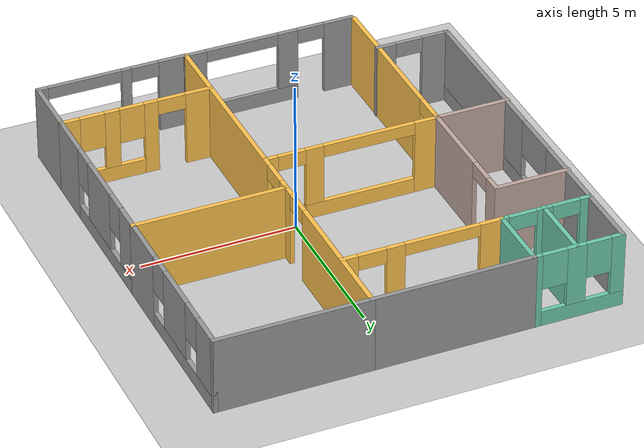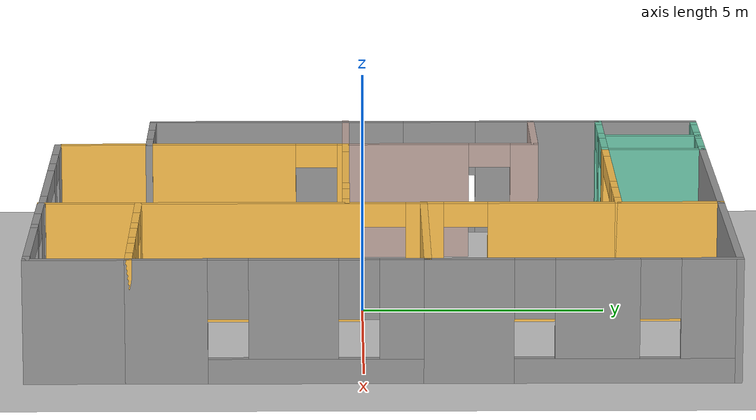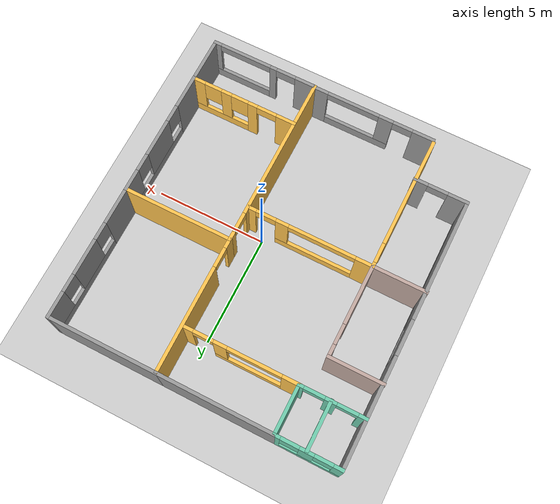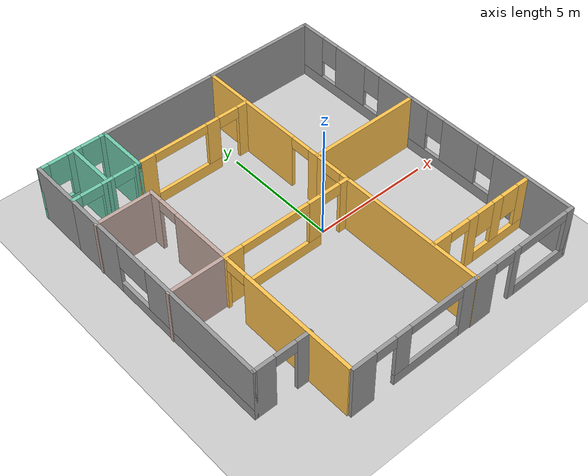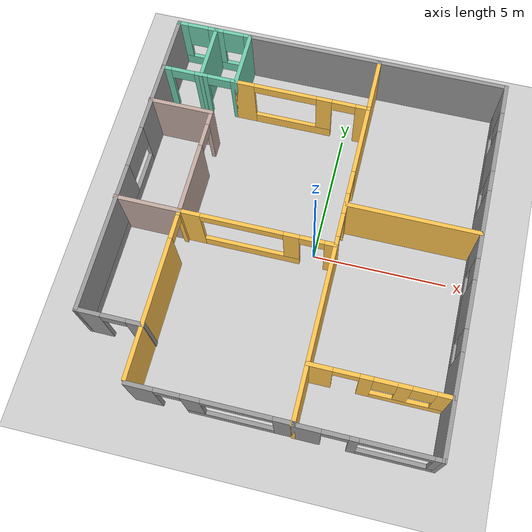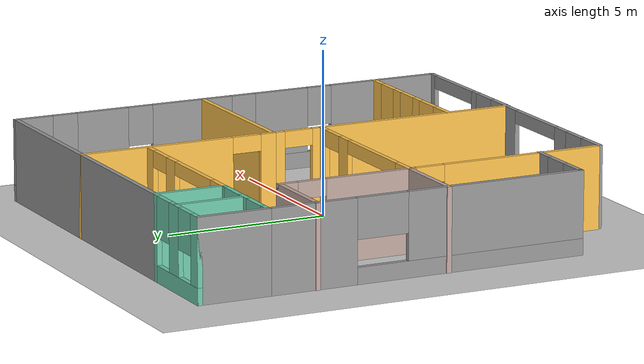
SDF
<sdf version="1.6">
 <world name="default">
  <model name="ground_plane">
   <static>1</static>
   <link name="link">
    <collision name="collision">
     <geometry><plane><normal>0 0 1</normal><size>100 100</size></plane></geometry>
     <surface>
      <contact><collide_bitmask>65535</collide_bitmask></contact>
      <friction><ode><mu>100</mu><mu2>50</mu2></ode></friction>
     </surface>
    </collision>
    <visual name="visual">
     <cast_shadows>0</cast_shadows>
     <geometry><plane><normal>0 0 1</normal><size>100 100</size></plane></geometry>
     <material>
      <script><uri>file://media/materials/scripts/gazebo.material</uri><name>Gazebo/Grey</name></script>
     </material>
    </visual>
   </link>
  </model>
  <model name="Building">
   <pose>-0.7405 0.37527 0 0 -0 0</pose>
   <link name="Wall_0">
    <pose>6.41568 -2.05 0 0 -0 1.5708</pose>
    <visual name="Wall_0_Visual_0">
     <pose>-2.18903 0 1.25 0 -0 0</pose>
     <geometry><box><size>1.62194 0.15 2.5</size></box></geometry>
     <material>
      <script><uri>file://media/materials/scripts/gazebo.material</uri><name>Gazebo/Grey</name></script>
      <ambient>1 1 1 1</ambient>
     </material>
     <meta><layer>0</layer></meta>
    </visual>
    <collision name="Wall_0_Collision_0">
     <geometry><box><size>1.62194 0.15 2.5</size></box></geometry>
     <pose>-2.18903 0 1.25 0 -0 0</pose>
    </collision>
    <visual name="Wall_0_Visual_1">
     <pose>0.81097 0 0.25 0 -0 0</pose>
     <geometry><box><size>4.37806 0.15 0.5</size></box></geometry>
     <material>
      <script><uri>file://media/materials/scripts/gazebo.material</uri><name>Gazebo/Grey</name></script>
      <ambient>1 1 1 1</ambient>
     </material>
     <meta><layer>0</layer></meta>
    </visual>
    <collision name="Wall_0_Collision_1">
     <geometry><box><size>4.37806 0.15 0.5</size></box></geometry>
     <pose>0.81097 0 0.25 0 -0 0</pose>
    </collision>
    <visual name="Wall_0_Visual_2">
     <pose>0.301348 0 1.5 0 -0 0</pose>
     <geometry><box><size>1.75882 0.15 2</size></box></geometry>
     <material>
      <script><uri>file://media/materials/scripts/gazebo.material</uri><name>Gazebo/Grey</name></script>
      <ambient>1 1 1 1</ambient>
     </material>
     <meta><layer>0</layer></meta>
    </visual>
    <collision name="Wall_0_Collision_2">
     <geometry><box><size>1.75882 0.15 2</size></box></geometry>
     <pose>0.301348 0 1.5 0 -0 0</pose>
    </collision>
    <visual name="Wall_0_Visual_3">
     <pose>2.49038 0 1.5 0 -0 0</pose>
     <geometry><box><size>1.01924 0.15 2</size></box></geometry>
     <material>
      <script><uri>file://media/materials/scripts/gazebo.material</uri><name>Gazebo/Grey</name></script>
      <ambient>1 1 1 1</ambient>
     </material>
     <meta><layer>0</layer></meta>
    </visual>
    <collision name="Wall_0_Collision_3">
     <geometry><box><size>1.01924 0.15 2</size></box></geometry>
     <pose>2.49038 0 1.5 0 -0 0</pose>
    </collision>
    <visual name="Wall_0_Visual_4">
     <pose>-0.97806 0 1.9 0 -0 0</pose>
     <geometry><box><size>0.8 0.15 1.2</size></box></geometry>
     <material>
      <script><uri>file://media/materials/scripts/gazebo.material</uri><name>Gazebo/Grey</name></script>
      <ambient>1 1 1 1</ambient>
     </material>
     <meta><layer>0</layer></meta>
    </visual>
    <collision name="Wall_0_Collision_4">
     <geometry><box><size>0.8 0.15 1.2</size></box></geometry>
     <pose>-0.97806 0 1.9 0 -0 0</pose>
    </collision>
    <visual name="Wall_0_Visual_5">
     <pose>1.58076 0 1.9 0 -0 0</pose>
     <geometry><box><size>0.8 0.15 1.2</size></box></geometry>
     <material>
      <script><uri>file://media/materials/scripts/gazebo.material</uri><name>Gazebo/Grey</name></script>
      <ambient>1 1 1 1</ambient>
     </material>
     <meta><layer>0</layer></meta>
    </visual>
    <collision name="Wall_0_Collision_5">
     <geometry><box><size>0.8 0.15 1.2</size></box></geometry>
     <pose>1.58076 0 1.9 0 -0 0</pose>
    </collision>
   </link>
   <link name="Wall_1">
    <collision name="Wall_1_Collision">
     <geometry><box><size>5 0.15 2.5</size></box></geometry>
     <pose>0 0 1.25 0 -0 0</pose>
    </collision>
    <visual name="Wall_1_Visual">
     <pose>0 0 1.25 0 -0 0</pose>
     <geometry><box><size>5 0.15 2.5</size></box></geometry>
     <material>
      <script><uri>file://media/materials/scripts/gazebo.material</uri><name>Gazebo/Grey</name></script>
      <ambient>1 0.764706 0.305882 1</ambient>
     </material>
     <meta><layer>0</layer></meta>
    </visual>
    <pose>3.99068 0.875 0 0 -0 3.14159</pose>
   </link>
   <link name="Wall_12">
    <collision name="Wall_12_Collision">
     <geometry><box><size>5.25 0.15 2.5</size></box></geometry>
     <pose>0 0 1.25 0 -0 0</pose>
    </collision>
    <visual name="Wall_12_Visual">
     <pose>0 0 1.25 0 -0 0</pose>
     <geometry><box><size>5.25 0.15 2.5</size></box></geometry>
     <material>
      <script><uri>file://media/materials/scripts/gazebo.material</uri><name>Gazebo/Grey</name></script>
      <ambient>1 1 1 1</ambient>
     </material>
     <meta><layer>0</layer></meta>
    </visual>
    <pose>-0.984323 6.975 0 0 -0 3.14159</pose>
   </link>
   <link name="Wall_13">
    <collision name="Wall_13_Collision">
     <geometry><box><size>2.25 0.15 2.5</size></box></geometry>
     <pose>0 0 1.25 0 -0 0</pose>
    </collision>
    <visual name="Wall_13_Visual">
     <pose>0 0 1.25 0 -0 0</pose>
     <geometry><box><size>2.25 0.15 2.5</size></box></geometry>
     <material>
      <script><uri>file://media/materials/scripts/gazebo.material</uri><name>Gazebo/Grey</name></script>
      <ambient>0.435294 0.796078 0.67451 1</ambient>
     </material>
     <meta><layer>0</layer></meta>
    </visual>
    <pose>-3.53432 5.925 0 0 -0 -1.5708</pose>
   </link>
   <link name="Wall_14">
    <pose>-0.984323 4.875 0 0 -0 0</pose>
    <visual name="Wall_14_Visual_0">
     <pose>-2.22764 0 1.25 0 -0 0</pose>
     <geometry><box><size>0.794723 0.15 2.5</size></box></geometry>
     <material>
      <script><uri>file://media/materials/scripts/gazebo.material</uri><name>Gazebo/Grey</name></script>
      <ambient>1 0.764706 0.305882 1</ambient>
     </material>
     <meta><layer>0</layer></meta>
    </visual>
    <collision name="Wall_14_Collision_0">
     <geometry><box><size>0.794723 0.15 2.5</size></box></geometry>
     <pose>-2.22764 0 1.25 0 -0 0</pose>
    </collision>
    <visual name="Wall_14_Visual_1">
     <pose>2.34319 0 1.25 0 -0 0</pose>
     <geometry><box><size>0.563624 0.15 2.5</size></box></geometry>
     <material>
      <script><uri>file://media/materials/scripts/gazebo.material</uri><name>Gazebo/Grey</name></script>
      <ambient>1 0.764706 0.305882 1</ambient>
     </material>
     <meta><layer>0</layer></meta>
    </visual>
    <collision name="Wall_14_Collision_1">
     <geometry><box><size>0.563624 0.15 2.5</size></box></geometry>
     <pose>2.34319 0 1.25 0 -0 0</pose>
    </collision>
    <visual name="Wall_14_Visual_2">
     <pose>-0.334451 0 0.25 0 -0 0</pose>
     <geometry><box><size>2.99165 0.15 0.5</size></box></geometry>
     <material>
      <script><uri>file://media/materials/scripts/gazebo.material</uri><name>Gazebo/Grey</name></script>
      <ambient>1 0.764706 0.305882 1</ambient>
     </material>
     <meta><layer>0</layer></meta>
    </visual>
    <collision name="Wall_14_Collision_2">
     <geometry><box><size>2.99165 0.15 0.5</size></box></geometry>
     <pose>-0.334451 0 0.25 0 -0 0</pose>
    </collision>
    <visual name="Wall_14_Visual_3">
     <pose>0.865549 0 1.5 0 -0 0</pose>
     <geometry><box><size>0.591654 0.15 2</size></box></geometry>
     <material>
      <script><uri>file://media/materials/scripts/gazebo.material</uri><name>Gazebo/Grey</name></script>
      <ambient>1 0.764706 0.305882 1</ambient>
     </material>
     <meta><layer>0</layer></meta>
    </visual>
    <collision name="Wall_14_Collision_3">
     <geometry><box><size>0.591654 0.15 2</size></box></geometry>
     <pose>0.865549 0 1.5 0 -0 0</pose>
    </collision>
    <visual name="Wall_14_Visual_4">
     <pose>1.61138 0 2.25 0 -0 0</pose>
     <geometry><box><size>0.9 0.15 0.5</size></box></geometry>
     <material>
      <script><uri>file://media/materials/scripts/gazebo.material</uri><name>Gazebo/Grey</name></script>
      <ambient>1 0.764706 0.305882 1</ambient>
     </material>
     <meta><layer>0</layer></meta>
    </visual>
    <collision name="Wall_14_Collision_4">
     <geometry><box><size>0.9 0.15 0.5</size></box></geometry>
     <pose>1.61138 0 2.25 0 -0 0</pose>
    </collision>
    <visual name="Wall_14_Visual_5">
     <pose>-0.630277 0 2.3 0 -0 0</pose>
     <geometry><box><size>2.4 0.15 0.4</size></box></geometry>
     <material>
      <script><uri>file://media/materials/scripts/gazebo.material</uri><name>Gazebo/Grey</name></script>
      <ambient>1 0.764706 0.305882 1</ambient>
     </material>
     <meta><layer>0</layer></meta>
    </visual>
    <collision name="Wall_14_Collision_5">
     <geometry><box><size>2.4 0.15 0.4</size></box></geometry>
     <pose>-0.630277 0 2.3 0 -0 0</pose>
    </collision>
   </link>
   <link name="Wall_16">
    <pose>-4.95932 6.975 0 0 -0 3.14159</pose>
    <visual name="Wall_16_Visual_0">
     <pose>-1.33173 0 1.25 0 -0 0</pose>
     <geometry><box><size>0.336546 0.15 2.5</size></box></geometry>
     <material>
      <script><uri>file://media/materials/scripts/gazebo.material</uri><name>Gazebo/Grey</name></script>
      <ambient>0.435294 0.796078 0.67451 1</ambient>
     </material>
     <meta><layer>0</layer></meta>
    </visual>
    <collision name="Wall_16_Collision_0">
     <geometry><box><size>0.336546 0.15 2.5</size></box></geometry>
     <pose>-1.33173 0 1.25 0 -0 0</pose>
    </collision>
    <visual name="Wall_16_Visual_1">
     <pose>0.168273 0 0.25 0 -0 0</pose>
     <geometry><box><size>2.66345 0.15 0.5</size></box></geometry>
     <material>
      <script><uri>file://media/materials/scripts/gazebo.material</uri><name>Gazebo/Grey</name></script>
      <ambient>0.435294 0.796078 0.67451 1</ambient>
     </material>
     <meta><layer>0</layer></meta>
    </visual>
    <collision name="Wall_16_Collision_1">
     <geometry><box><size>2.66345 0.15 0.5</size></box></geometry>
     <pose>0.168273 0 0.25 0 -0 0</pose>
    </collision>
    <visual name="Wall_16_Visual_2">
     <pose>-0.053965 0 1.5 0 -0 0</pose>
     <geometry><box><size>0.618979 0.15 2</size></box></geometry>
     <material>
      <script><uri>file://media/materials/scripts/gazebo.material</uri><name>Gazebo/Grey</name></script>
      <ambient>0.435294 0.796078 0.67451 1</ambient>
     </material>
     <meta><layer>0</layer></meta>
    </visual>
    <collision name="Wall_16_Collision_2">
     <geometry><box><size>0.618979 0.15 2</size></box></geometry>
     <pose>-0.053965 0 1.5 0 -0 0</pose>
    </collision>
    <visual name="Wall_16_Visual_3">
     <pose>1.27776 0 1.5 0 -0 0</pose>
     <geometry><box><size>0.444475 0.15 2</size></box></geometry>
     <material>
      <script><uri>file://media/materials/scripts/gazebo.material</uri><name>Gazebo/Grey</name></script>
      <ambient>0.435294 0.796078 0.67451 1</ambient>
     </material>
     <meta><layer>0</layer></meta>
    </visual>
    <collision name="Wall_16_Collision_3">
     <geometry><box><size>0.444475 0.15 2</size></box></geometry>
     <pose>1.27776 0 1.5 0 -0 0</pose>
    </collision>
    <visual name="Wall_16_Visual_4">
     <pose>-0.763454 0 1.9 0 -0 0</pose>
     <geometry><box><size>0.8 0.15 1.2</size></box></geometry>
     <material>
      <script><uri>file://media/materials/scripts/gazebo.material</uri><name>Gazebo/Grey</name></script>
      <ambient>0.435294 0.796078 0.67451 1</ambient>
     </material>
     <meta><layer>0</layer></meta>
    </visual>
    <collision name="Wall_16_Collision_4">
     <geometry><box><size>0.8 0.15 1.2</size></box></geometry>
     <pose>-0.763454 0 1.9 0 -0 0</pose>
    </collision>
    <visual name="Wall_16_Visual_5">
     <pose>0.655525 0 1.9 0 -0 0</pose>
     <geometry><box><size>0.8 0.15 1.2</size></box></geometry>
     <material>
      <script><uri>file://media/materials/scripts/gazebo.material</uri><name>Gazebo/Grey</name></script>
      <ambient>0.435294 0.796078 0.67451 1</ambient>
     </material>
     <meta><layer>0</layer></meta>
    </visual>
    <collision name="Wall_16_Collision_5">
     <geometry><box><size>0.8 0.15 1.2</size></box></geometry>
     <pose>0.655525 0 1.9 0 -0 0</pose>
    </collision>
   </link>
   <link name="Wall_24">
    <collision name="Wall_24_Collision">
     <geometry><box><size>2.25 0.15 2.5</size></box></geometry>
     <pose>0 0 1.25 0 -0 0</pose>
    </collision>
    <visual name="Wall_24_Visual">
     <pose>0 0 1.25 0 -0 0</pose>
     <geometry><box><size>2.25 0.15 2.5</size></box></geometry>
     <material>
      <script><uri>file://media/materials/scripts/gazebo.material</uri><name>Gazebo/Grey</name></script>
      <ambient>1 1 1 1</ambient>
     </material>
     <meta><layer>0</layer></meta>
    </visual>
    <pose>-6.38432 5.925 0 0 -0 -1.5708</pose>
   </link>
   <link name="Wall_25">
    <pose>-4.95932 4.875 0 0 -0 0</pose>
    <visual name="Wall_25_Visual_0">
     <pose>-1.29513 0 1.25 0 -0 0</pose>
     <geometry><box><size>0.409735 0.15 2.5</size></box></geometry>
     <material>
      <script><uri>file://media/materials/scripts/gazebo.material</uri><name>Gazebo/Grey</name></script>
      <ambient>0.435294 0.796078 0.67451 1</ambient>
     </material>
     <meta><layer>0</layer></meta>
    </visual>
    <collision name="Wall_25_Collision_0">
     <geometry><box><size>0.409735 0.15 2.5</size></box></geometry>
     <pose>-1.29513 0 1.25 0 -0 0</pose>
    </collision>
    <visual name="Wall_25_Visual_1">
     <pose>0.063311 0 1.25 0 -0 0</pose>
     <geometry><box><size>0.50715 0.15 2.5</size></box></geometry>
     <material>
      <script><uri>file://media/materials/scripts/gazebo.material</uri><name>Gazebo/Grey</name></script>
      <ambient>0.435294 0.796078 0.67451 1</ambient>
     </material>
     <meta><layer>0</layer></meta>
    </visual>
    <collision name="Wall_25_Collision_1">
     <geometry><box><size>0.50715 0.15 2.5</size></box></geometry>
     <pose>0.063311 0 1.25 0 -0 0</pose>
    </collision>
    <visual name="Wall_25_Visual_2">
     <pose>1.35844 0 1.25 0 -0 0</pose>
     <geometry><box><size>0.283114 0.15 2.5</size></box></geometry>
     <material>
      <script><uri>file://media/materials/scripts/gazebo.material</uri><name>Gazebo/Grey</name></script>
      <ambient>0.435294 0.796078 0.67451 1</ambient>
     </material>
     <meta><layer>0</layer></meta>
    </visual>
    <collision name="Wall_25_Collision_2">
     <geometry><box><size>0.283114 0.15 2.5</size></box></geometry>
     <pose>1.35844 0 1.25 0 -0 0</pose>
    </collision>
    <visual name="Wall_25_Visual_3">
     <pose>-0.640265 0 2.25 0 -0 0</pose>
     <geometry><box><size>0.9 0.15 0.5</size></box></geometry>
     <material>
      <script><uri>file://media/materials/scripts/gazebo.material</uri><name>Gazebo/Grey</name></script>
      <ambient>0.435294 0.796078 0.67451 1</ambient>
     </material>
     <meta><layer>0</layer></meta>
    </visual>
    <collision name="Wall_25_Collision_3">
     <geometry><box><size>0.9 0.15 0.5</size></box></geometry>
     <pose>-0.640265 0 2.25 0 -0 0</pose>
    </collision>
    <visual name="Wall_25_Visual_4">
     <pose>0.766886 0 2.25 0 -0 0</pose>
     <geometry><box><size>0.9 0.15 0.5</size></box></geometry>
     <material>
      <script><uri>file://media/materials/scripts/gazebo.material</uri><name>Gazebo/Grey</name></script>
      <ambient>0.435294 0.796078 0.67451 1</ambient>
     </material>
     <meta><layer>0</layer></meta>
    </visual>
    <collision name="Wall_25_Collision_4">
     <geometry><box><size>0.9 0.15 0.5</size></box></geometry>
     <pose>0.766886 0 2.25 0 -0 0</pose>
    </collision>
   </link>
   <link name="Wall_27">
    <pose>-6.38432 -0.05 0 0 -0 -1.5708</pose>
    <visual name="Wall_27_Visual_0">
     <pose>-3.60177 0 1.25 0 -0 0</pose>
     <geometry><box><size>2.79646 0.15 2.5</size></box></geometry>
     <material>
      <script><uri>file://media/materials/scripts/gazebo.material</uri><name>Gazebo/Grey</name></script>
      <ambient>1 1 1 1</ambient>
     </material>
     <meta><layer>0</layer></meta>
    </visual>
    <collision name="Wall_27_Collision_0">
     <geometry><box><size>2.79646 0.15 2.5</size></box></geometry>
     <pose>-3.60177 0 1.25 0 -0 0</pose>
    </collision>
    <visual name="Wall_27_Visual_1">
     <pose>1.39823 0 0.25 0 -0 0</pose>
     <geometry><box><size>7.20354 0.15 0.5</size></box></geometry>
     <material>
      <script><uri>file://media/materials/scripts/gazebo.material</uri><name>Gazebo/Grey</name></script>
      <ambient>1 1 1 1</ambient>
     </material>
     <meta><layer>0</layer></meta>
    </visual>
    <collision name="Wall_27_Collision_1">
     <geometry><box><size>7.20354 0.15 0.5</size></box></geometry>
     <pose>1.39823 0 0.25 0 -0 0</pose>
    </collision>
    <visual name="Wall_27_Visual_2">
     <pose>2.19823 0 1.5 0 -0 0</pose>
     <geometry><box><size>5.60354 0.15 2</size></box></geometry>
     <material>
      <script><uri>file://media/materials/scripts/gazebo.material</uri><name>Gazebo/Grey</name></script>
      <ambient>1 1 1 1</ambient>
     </material>
     <meta><layer>0</layer></meta>
    </visual>
    <collision name="Wall_27_Collision_2">
     <geometry><box><size>5.60354 0.15 2</size></box></geometry>
     <pose>2.19823 0 1.5 0 -0 0</pose>
    </collision>
    <visual name="Wall_27_Visual_3">
     <pose>-1.40354 0 1.9 0 -0 0</pose>
     <geometry><box><size>1.6 0.15 1.2</size></box></geometry>
     <material>
      <script><uri>file://media/materials/scripts/gazebo.material</uri><name>Gazebo/Grey</name></script>
      <ambient>1 1 1 1</ambient>
     </material>
     <meta><layer>0</layer></meta>
    </visual>
    <collision name="Wall_27_Collision_3">
     <geometry><box><size>1.6 0.15 1.2</size></box></geometry>
     <pose>-1.40354 0 1.9 0 -0 0</pose>
    </collision>
   </link>
   <link name="Wall_3">
    <pose>3.99068 -4.975 0 0 -0 0</pose>
    <visual name="Wall_3_Visual_0">
     <pose>-2.03846 0 1.25 0 -0 0</pose>
     <geometry><box><size>0.923088 0.15 2.5</size></box></geometry>
     <material>
      <script><uri>file://media/materials/scripts/gazebo.material</uri><name>Gazebo/Grey</name></script>
      <ambient>1 0.764706 0.305882 1</ambient>
     </material>
     <meta><layer>0</layer></meta>
    </visual>
    <collision name="Wall_3_Collision_0">
     <geometry><box><size>0.923088 0.15 2.5</size></box></geometry>
     <pose>-2.03846 0 1.25 0 -0 0</pose>
    </collision>
    <visual name="Wall_3_Visual_1">
     <pose>-0.452103 0 1.25 0 -0 0</pose>
     <geometry><box><size>0.449617 0.15 2.5</size></box></geometry>
     <material>
      <script><uri>file://media/materials/scripts/gazebo.material</uri><name>Gazebo/Grey</name></script>
      <ambient>1 0.764706 0.305882 1</ambient>
     </material>
     <meta><layer>0</layer></meta>
    </visual>
    <collision name="Wall_3_Collision_1">
     <geometry><box><size>0.449617 0.15 2.5</size></box></geometry>
     <pose>-0.452103 0 1.25 0 -0 0</pose>
    </collision>
    <visual name="Wall_3_Visual_2">
     <pose>1.13635 0 0.25 0 -0 0</pose>
     <geometry><box><size>2.72729 0.15 0.5</size></box></geometry>
     <material>
      <script><uri>file://media/materials/scripts/gazebo.material</uri><name>Gazebo/Grey</name></script>
      <ambient>1 0.764706 0.305882 1</ambient>
     </material>
     <meta><layer>0</layer></meta>
    </visual>
    <collision name="Wall_3_Collision_2">
     <geometry><box><size>2.72729 0.15 0.5</size></box></geometry>
     <pose>1.13635 0 0.25 0 -0 0</pose>
    </collision>
    <visual name="Wall_3_Visual_3">
     <pose>0.812409 0 1.5 0 -0 0</pose>
     <geometry><box><size>0.479408 0.15 2</size></box></geometry>
     <material>
      <script><uri>file://media/materials/scripts/gazebo.material</uri><name>Gazebo/Grey</name></script>
      <ambient>1 0.764706 0.305882 1</ambient>
     </material>
     <meta><layer>0</layer></meta>
    </visual>
    <collision name="Wall_3_Collision_3">
     <geometry><box><size>0.479408 0.15 2</size></box></geometry>
     <pose>0.812409 0 1.5 0 -0 0</pose>
    </collision>
    <visual name="Wall_3_Visual_4">
     <pose>2.17606 0 1.5 0 -0 0</pose>
     <geometry><box><size>0.647887 0.15 2</size></box></geometry>
     <material>
      <script><uri>file://media/materials/scripts/gazebo.material</uri><name>Gazebo/Grey</name></script>
      <ambient>1 0.764706 0.305882 1</ambient>
     </material>
     <meta><layer>0</layer></meta>
    </visual>
    <collision name="Wall_3_Collision_4">
     <geometry><box><size>0.647887 0.15 2</size></box></geometry>
     <pose>2.17606 0 1.5 0 -0 0</pose>
    </collision>
    <visual name="Wall_3_Visual_5">
     <pose>0.172705 0 1.9 0 -0 0</pose>
     <geometry><box><size>0.8 0.15 1.2</size></box></geometry>
     <material>
      <script><uri>file://media/materials/scripts/gazebo.material</uri><name>Gazebo/Grey</name></script>
      <ambient>1 0.764706 0.305882 1</ambient>
     </material>
     <meta><layer>0</layer></meta>
    </visual>
    <collision name="Wall_3_Collision_5">
     <geometry><box><size>0.8 0.15 1.2</size></box></geometry>
     <pose>0.172705 0 1.9 0 -0 0</pose>
    </collision>
    <visual name="Wall_3_Visual_6">
     <pose>1.45211 0 1.9 0 -0 0</pose>
     <geometry><box><size>0.8 0.15 1.2</size></box></geometry>
     <material>
      <script><uri>file://media/materials/scripts/gazebo.material</uri><name>Gazebo/Grey</name></script>
      <ambient>1 0.764706 0.305882 1</ambient>
     </material>
     <meta><layer>0</layer></meta>
    </visual>
    <collision name="Wall_3_Collision_6">
     <geometry><box><size>0.8 0.15 1.2</size></box></geometry>
     <pose>1.45211 0 1.9 0 -0 0</pose>
    </collision>
    <visual name="Wall_3_Visual_7">
     <pose>-1.12691 0 2.25 0 -0 0</pose>
     <geometry><box><size>0.9 0.15 0.5</size></box></geometry>
     <material>
      <script><uri>file://media/materials/scripts/gazebo.material</uri><name>Gazebo/Grey</name></script>
      <ambient>1 0.764706 0.305882 1</ambient>
     </material>
     <meta><layer>0</layer></meta>
    </visual>
    <collision name="Wall_3_Collision_7">
     <geometry><box><size>0.9 0.15 0.5</size></box></geometry>
     <pose>-1.12691 0 2.25 0 -0 0</pose>
    </collision>
   </link>
   <link name="Wall_30">
    <collision name="Wall_30_Collision">
     <geometry><box><size>2.5 0.15 2.5</size></box></geometry>
     <pose>0 0 1.25 0 -0 0</pose>
    </collision>
    <visual name="Wall_30_Visual">
     <pose>0 0 1.25 0 -0 0</pose>
     <geometry><box><size>2.5 0.15 2.5</size></box></geometry>
     <material>
      <script><uri>file://media/materials/scripts/gazebo.material</uri><name>Gazebo/Grey</name></script>
      <ambient>0.760784 0.662745 0.627451 1</ambient>
     </material>
     <meta><layer>0</layer></meta>
    </visual>
    <pose>-5.24068 3.38074 0 0 -0 0</pose>
   </link>
   <link name="Wall_31">
    <pose>-4.06568 1.33074 0 0 -0 -1.5708</pose>
    <visual name="Wall_31_Visual_0">
     <pose>-1.82051 0 1.25 0 -0 0</pose>
     <geometry><box><size>0.608974 0.15 2.5</size></box></geometry>
     <material>
      <script><uri>file://media/materials/scripts/gazebo.material</uri><name>Gazebo/Grey</name></script>
      <ambient>0.760784 0.662745 0.627451 1</ambient>
     </material>
     <meta><layer>0</layer></meta>
    </visual>
    <collision name="Wall_31_Collision_0">
     <geometry><box><size>0.608974 0.15 2.5</size></box></geometry>
     <pose>-1.82051 0 1.25 0 -0 0</pose>
    </collision>
    <visual name="Wall_31_Visual_1">
     <pose>0.754487 0 1.25 0 -0 0</pose>
     <geometry><box><size>2.74103 0.15 2.5</size></box></geometry>
     <material>
      <script><uri>file://media/materials/scripts/gazebo.material</uri><name>Gazebo/Grey</name></script>
      <ambient>0.760784 0.662745 0.627451 1</ambient>
     </material>
     <meta><layer>0</layer></meta>
    </visual>
    <collision name="Wall_31_Collision_1">
     <geometry><box><size>2.74103 0.15 2.5</size></box></geometry>
     <pose>0.754487 0 1.25 0 -0 0</pose>
    </collision>
    <visual name="Wall_31_Visual_2">
     <pose>-1.06603 0 2.25 0 -0 0</pose>
     <geometry><box><size>0.9 0.15 0.5</size></box></geometry>
     <material>
      <script><uri>file://media/materials/scripts/gazebo.material</uri><name>Gazebo/Grey</name></script>
      <ambient>0.760784 0.662745 0.627451 1</ambient>
     </material>
     <meta><layer>0</layer></meta>
    </visual>
    <collision name="Wall_31_Collision_2">
     <geometry><box><size>0.9 0.15 0.5</size></box></geometry>
     <pose>-1.06603 0 2.25 0 -0 0</pose>
    </collision>
   </link>
   <link name="Wall_34">
    <pose>-1.26568 -0.719262 0 0 -0 0</pose>
    <visual name="Wall_34_Visual_0">
     <pose>-2.45687 0 1.25 0 -0 0</pose>
     <geometry><box><size>0.836268 0.15 2.5</size></box></geometry>
     <material>
      <script><uri>file://media/materials/scripts/gazebo.material</uri><name>Gazebo/Grey</name></script>
      <ambient>1 0.764706 0.305882 1</ambient>
     </material>
     <meta><layer>0</layer></meta>
    </visual>
    <collision name="Wall_34_Collision_0">
     <geometry><box><size>0.836268 0.15 2.5</size></box></geometry>
     <pose>-2.45687 0 1.25 0 -0 0</pose>
    </collision>
    <visual name="Wall_34_Visual_1">
     <pose>2.65737 0 1.25 0 -0 0</pose>
     <geometry><box><size>0.435259 0.15 2.5</size></box></geometry>
     <material>
      <script><uri>file://media/materials/scripts/gazebo.material</uri><name>Gazebo/Grey</name></script>
      <ambient>1 0.764706 0.305882 1</ambient>
     </material>
     <meta><layer>0</layer></meta>
    </visual>
    <collision name="Wall_34_Collision_1">
     <geometry><box><size>0.435259 0.15 2.5</size></box></geometry>
     <pose>2.65737 0 1.25 0 -0 0</pose>
    </collision>
    <visual name="Wall_34_Visual_2">
     <pose>-0.249495 0 0.25 0 -0 0</pose>
     <geometry><box><size>3.57847 0.15 0.5</size></box></geometry>
     <material>
      <script><uri>file://media/materials/scripts/gazebo.material</uri><name>Gazebo/Grey</name></script>
      <ambient>1 0.764706 0.305882 1</ambient>
     </material>
     <meta><layer>0</layer></meta>
    </visual>
    <collision name="Wall_34_Collision_2">
     <geometry><box><size>3.57847 0.15 0.5</size></box></geometry>
     <pose>-0.249495 0 0.25 0 -0 0</pose>
    </collision>
    <visual name="Wall_34_Visual_3">
     <pose>1.2505 0 1.5 0 -0 0</pose>
     <geometry><box><size>0.578474 0.15 2</size></box></geometry>
     <material>
      <script><uri>file://media/materials/scripts/gazebo.material</uri><name>Gazebo/Grey</name></script>
      <ambient>1 0.764706 0.305882 1</ambient>
     </material>
     <meta><layer>0</layer></meta>
    </visual>
    <collision name="Wall_34_Collision_3">
     <geometry><box><size>0.578474 0.15 2</size></box></geometry>
     <pose>1.2505 0 1.5 0 -0 0</pose>
    </collision>
    <visual name="Wall_34_Visual_4">
     <pose>1.98974 0 2.25 0 -0 0</pose>
     <geometry><box><size>0.9 0.15 0.5</size></box></geometry>
     <material>
      <script><uri>file://media/materials/scripts/gazebo.material</uri><name>Gazebo/Grey</name></script>
      <ambient>1 0.764706 0.305882 1</ambient>
     </material>
     <meta><layer>0</layer></meta>
    </visual>
    <collision name="Wall_34_Collision_4">
     <geometry><box><size>0.9 0.15 0.5</size></box></geometry>
     <pose>1.98974 0 2.25 0 -0 0</pose>
    </collision>
    <visual name="Wall_34_Visual_5">
     <pose>-0.538732 0 2.3 0 -0 0</pose>
     <geometry><box><size>3 0.15 0.4</size></box></geometry>
     <material>
      <script><uri>file://media/materials/scripts/gazebo.material</uri><name>Gazebo/Grey</name></script>
      <ambient>1 0.764706 0.305882 1</ambient>
     </material>
     <meta><layer>0</layer></meta>
    </visual>
    <collision name="Wall_34_Collision_5">
     <geometry><box><size>3 0.15 0.4</size></box></geometry>
     <pose>-0.538732 0 2.3 0 -0 0</pose>
    </collision>
   </link>
   <link name="Wall_36">
    <pose>-5.20932 -4.975 0 0 -0 0</pose>
    <visual name="Wall_36_Visual_0">
     <pose>-0.782538 0 1.25 0 -0 0</pose>
     <geometry><box><size>0.934924 0.15 2.5</size></box></geometry>
     <material>
      <script><uri>file://media/materials/scripts/gazebo.material</uri><name>Gazebo/Grey</name></script>
      <ambient>1 1 1 1</ambient>
     </material>
     <meta><layer>0</layer></meta>
    </visual>
    <collision name="Wall_36_Collision_0">
     <geometry><box><size>0.934924 0.15 2.5</size></box></geometry>
     <pose>-0.782538 0 1.25 0 -0 0</pose>
    </collision>
    <visual name="Wall_36_Visual_1">
     <pose>0.917462 0 1.25 0 -0 0</pose>
     <geometry><box><size>0.665076 0.15 2.5</size></box></geometry>
     <material>
      <script><uri>file://media/materials/scripts/gazebo.material</uri><name>Gazebo/Grey</name></script>
      <ambient>1 1 1 1</ambient>
     </material>
     <meta><layer>0</layer></meta>
    </visual>
    <collision name="Wall_36_Collision_1">
     <geometry><box><size>0.665076 0.15 2.5</size></box></geometry>
     <pose>0.917462 0 1.25 0 -0 0</pose>
    </collision>
    <visual name="Wall_36_Visual_2">
     <pose>0.134924 0 2.25 0 -0 0</pose>
     <geometry><box><size>0.9 0.15 0.5</size></box></geometry>
     <material>
      <script><uri>file://media/materials/scripts/gazebo.material</uri><name>Gazebo/Grey</name></script>
      <ambient>1 1 1 1</ambient>
     </material>
     <meta><layer>0</layer></meta>
    </visual>
    <collision name="Wall_36_Collision_2">
     <geometry><box><size>0.9 0.15 0.5</size></box></geometry>
     <pose>0.134924 0 2.25 0 -0 0</pose>
    </collision>
   </link>
   <link name="Wall_42">
    <collision name="Wall_42_Collision">
     <geometry><box><size>2.5 0.15 2.5</size></box></geometry>
     <pose>0 0 1.25 0 -0 0</pose>
    </collision>
    <visual name="Wall_42_Visual">
     <pose>0 0 1.25 0 -0 0</pose>
     <geometry><box><size>2.5 0.15 2.5</size></box></geometry>
     <material>
      <script><uri>file://media/materials/scripts/gazebo.material</uri><name>Gazebo/Grey</name></script>
      <ambient>0.760784 0.662745 0.627451 1</ambient>
     </material>
     <meta><layer>0</layer></meta>
    </visual>
    <pose>-5.24068 -0.719262 0 0 -0 3.14159</pose>
   </link>
   <link name="Wall_46">
    <pose>-1.20772 -6.9484 0 0 -0 3.14159</pose>
    <visual name="Wall_46_Visual_0">
     <pose>-2.49181 0 1.25 0 -0 0</pose>
     <geometry><box><size>0.766375 0.15 2.5</size></box></geometry>
     <material>
      <script><uri>file://media/materials/scripts/gazebo.material</uri><name>Gazebo/Grey</name></script>
      <ambient>1 1 1 1</ambient>
     </material>
     <meta><layer>0</layer></meta>
    </visual>
    <collision name="Wall_46_Collision_0">
     <geometry><box><size>0.766375 0.15 2.5</size></box></geometry>
     <pose>-2.49181 0 1.25 0 -0 0</pose>
    </collision>
    <visual name="Wall_46_Visual_1">
     <pose>2.36458 0 1.25 0 -0 0</pose>
     <geometry><box><size>1.02084 0.15 2.5</size></box></geometry>
     <material>
      <script><uri>file://media/materials/scripts/gazebo.material</uri><name>Gazebo/Grey</name></script>
      <ambient>1 1 1 1</ambient>
     </material>
     <meta><layer>0</layer></meta>
    </visual>
    <collision name="Wall_46_Collision_1">
     <geometry><box><size>1.02084 0.15 2.5</size></box></geometry>
     <pose>2.36458 0 1.25 0 -0 0</pose>
    </collision>
    <visual name="Wall_46_Visual_2">
     <pose>-0.577231 0 0.25 0 -0 0</pose>
     <geometry><box><size>3.06279 0.15 0.5</size></box></geometry>
     <material>
      <script><uri>file://media/materials/scripts/gazebo.material</uri><name>Gazebo/Grey</name></script>
      <ambient>1 1 1 1</ambient>
     </material>
     <meta><layer>0</layer></meta>
    </visual>
    <collision name="Wall_46_Collision_2">
     <geometry><box><size>3.06279 0.15 0.5</size></box></geometry>
     <pose>-0.577231 0 0.25 0 -0 0</pose>
    </collision>
    <visual name="Wall_46_Visual_3">
     <pose>0.622769 0 1.5 0 -0 0</pose>
     <geometry><box><size>0.662788 0.15 2</size></box></geometry>
     <material>
      <script><uri>file://media/materials/scripts/gazebo.material</uri><name>Gazebo/Grey</name></script>
      <ambient>1 1 1 1</ambient>
     </material>
     <meta><layer>0</layer></meta>
    </visual>
    <collision name="Wall_46_Collision_3">
     <geometry><box><size>0.662788 0.15 2</size></box></geometry>
     <pose>0.622769 0 1.5 0 -0 0</pose>
    </collision>
    <visual name="Wall_46_Visual_4">
     <pose>1.40416 0 2.25 0 -0 0</pose>
     <geometry><box><size>0.9 0.15 0.5</size></box></geometry>
     <material>
      <script><uri>file://media/materials/scripts/gazebo.material</uri><name>Gazebo/Grey</name></script>
      <ambient>1 1 1 1</ambient>
     </material>
     <meta><layer>0</layer></meta>
    </visual>
    <collision name="Wall_46_Collision_4">
     <geometry><box><size>0.9 0.15 0.5</size></box></geometry>
     <pose>1.40416 0 2.25 0 -0 0</pose>
    </collision>
    <visual name="Wall_46_Visual_5">
     <pose>-0.908625 0 2.3 0 -0 0</pose>
     <geometry><box><size>2.4 0.15 0.4</size></box></geometry>
     <material>
      <script><uri>file://media/materials/scripts/gazebo.material</uri><name>Gazebo/Grey</name></script>
      <ambient>1 1 1 1</ambient>
     </material>
     <meta><layer>0</layer></meta>
    </visual>
    <collision name="Wall_46_Collision_5">
     <geometry><box><size>2.4 0.15 0.4</size></box></geometry>
     <pose>-0.908625 0 2.3 0 -0 0</pose>
    </collision>
   </link>
   <link name="Wall_52">
    <pose>-4.06568 -3.76926 0 0 -0 -1.5708</pose>
    <visual name="Wall_52_Visual_0">
     <pose>-2.99686 0 1.25 0 -0 0</pose>
     <geometry><box><size>0.256277 0.15 2.5</size></box></geometry>
     <material>
      <script><uri>file://media/materials/scripts/gazebo.material</uri><name>Gazebo/Grey</name></script>
      <ambient>1 0.764706 0.305882 1</ambient>
     </material>
     <meta><layer>0</layer></meta>
    </visual>
    <collision name="Wall_52_Collision_0">
     <geometry><box><size>0.256277 0.15 2.5</size></box></geometry>
     <pose>-2.99686 0 1.25 0 -0 0</pose>
    </collision>
    <visual name="Wall_52_Visual_1">
     <pose>0.578139 0 1.25 0 -0 0</pose>
     <geometry><box><size>5.09372 0.15 2.5</size></box></geometry>
     <material>
      <script><uri>file://media/materials/scripts/gazebo.material</uri><name>Gazebo/Grey</name></script>
      <ambient>1 0.764706 0.305882 1</ambient>
     </material>
     <meta><layer>0</layer></meta>
    </visual>
    <collision name="Wall_52_Collision_1">
     <geometry><box><size>5.09372 0.15 2.5</size></box></geometry>
     <pose>0.578139 0 1.25 0 -0 0</pose>
    </collision>
    <visual name="Wall_52_Visual_2">
     <pose>-2.41872 0 2.25 0 -0 0</pose>
     <geometry><box><size>0.9 0.15 0.5</size></box></geometry>
     <material>
      <script><uri>file://media/materials/scripts/gazebo.material</uri><name>Gazebo/Grey</name></script>
      <ambient>1 0.764706 0.305882 1</ambient>
     </material>
     <meta><layer>0</layer></meta>
    </visual>
    <collision name="Wall_52_Collision_2">
     <geometry><box><size>0.9 0.15 0.5</size></box></geometry>
     <pose>-2.41872 0 2.25 0 -0 0</pose>
    </collision>
   </link>
   <link name="Wall_54">
    <pose>1.56568 -3.05 0 0 -0 -1.5708</pose>
    <visual name="Wall_54_Visual_0">
     <pose>-3.77831 0 1.25 0 -0 0</pose>
     <geometry><box><size>0.443388 0.15 2.5</size></box></geometry>
     <material>
      <script><uri>file://media/materials/scripts/gazebo.material</uri><name>Gazebo/Grey</name></script>
      <ambient>1 0.764706 0.305882 1</ambient>
     </material>
     <meta><layer>0</layer></meta>
    </visual>
    <collision name="Wall_54_Collision_0">
     <geometry><box><size>0.443388 0.15 2.5</size></box></geometry>
     <pose>-3.77831 0 1.25 0 -0 0</pose>
    </collision>
    <visual name="Wall_54_Visual_1">
     <pose>0.671694 0 1.25 0 -0 0</pose>
     <geometry><box><size>6.65661 0.15 2.5</size></box></geometry>
     <material>
      <script><uri>file://media/materials/scripts/gazebo.material</uri><name>Gazebo/Grey</name></script>
      <ambient>1 0.764706 0.305882 1</ambient>
     </material>
     <meta><layer>0</layer></meta>
    </visual>
    <collision name="Wall_54_Collision_1">
     <geometry><box><size>6.65661 0.15 2.5</size></box></geometry>
     <pose>0.671694 0 1.25 0 -0 0</pose>
    </collision>
    <visual name="Wall_54_Visual_2">
     <pose>-3.10661 0 2.25 0 -0 0</pose>
     <geometry><box><size>0.9 0.15 0.5</size></box></geometry>
     <material>
      <script><uri>file://media/materials/scripts/gazebo.material</uri><name>Gazebo/Grey</name></script>
      <ambient>1 0.764706 0.305882 1</ambient>
     </material>
     <meta><layer>0</layer></meta>
    </visual>
    <collision name="Wall_54_Collision_2">
     <geometry><box><size>0.9 0.15 0.5</size></box></geometry>
     <pose>-3.10661 0 2.25 0 -0 0</pose>
    </collision>
   </link>
   <link name="Wall_56">
    <pose>3.99068 -6.975 0 0 -0 0</pose>
    <visual name="Wall_56_Visual_0">
     <pose>-2.00022 0 1.25 0 -0 0</pose>
     <geometry><box><size>0.999564 0.15 2.5</size></box></geometry>
     <material>
      <script><uri>file://media/materials/scripts/gazebo.material</uri><name>Gazebo/Grey</name></script>
      <ambient>1 1 1 1</ambient>
     </material>
     <meta><layer>0</layer></meta>
    </visual>
    <collision name="Wall_56_Collision_0">
     <geometry><box><size>0.999564 0.15 2.5</size></box></geometry>
     <pose>-2.00022 0 1.25 0 -0 0</pose>
    </collision>
    <visual name="Wall_56_Visual_1">
     <pose>-0.441674 0 1.25 0 -0 0</pose>
     <geometry><box><size>0.317524 0.15 2.5</size></box></geometry>
     <material>
      <script><uri>file://media/materials/scripts/gazebo.material</uri><name>Gazebo/Grey</name></script>
      <ambient>1 1 1 1</ambient>
     </material>
     <meta><layer>0</layer></meta>
    </visual>
    <collision name="Wall_56_Collision_1">
     <geometry><box><size>0.317524 0.15 2.5</size></box></geometry>
     <pose>-0.441674 0 1.25 0 -0 0</pose>
    </collision>
    <visual name="Wall_56_Visual_2">
     <pose>1.10854 0 0.25 0 -0 0</pose>
     <geometry><box><size>2.78291 0.15 0.5</size></box></geometry>
     <material>
      <script><uri>file://media/materials/scripts/gazebo.material</uri><name>Gazebo/Grey</name></script>
      <ambient>1 1 1 1</ambient>
     </material>
     <meta><layer>0</layer></meta>
    </visual>
    <collision name="Wall_56_Collision_2">
     <geometry><box><size>2.78291 0.15 0.5</size></box></geometry>
     <pose>1.10854 0 0.25 0 -0 0</pose>
    </collision>
    <visual name="Wall_56_Visual_3">
     <pose>2.30854 0 1.5 0 -0 0</pose>
     <geometry><box><size>0.382912 0.15 2</size></box></geometry>
     <material>
      <script><uri>file://media/materials/scripts/gazebo.material</uri><name>Gazebo/Grey</name></script>
      <ambient>1 1 1 1</ambient>
     </material>
     <meta><layer>0</layer></meta>
    </visual>
    <collision name="Wall_56_Collision_3">
     <geometry><box><size>0.382912 0.15 2</size></box></geometry>
     <pose>2.30854 0 1.5 0 -0 0</pose>
    </collision>
    <visual name="Wall_56_Visual_4">
     <pose>-1.05044 0 2.25 0 -0 0</pose>
     <geometry><box><size>0.9 0.15 0.5</size></box></geometry>
     <material>
      <script><uri>file://media/materials/scripts/gazebo.material</uri><name>Gazebo/Grey</name></script>
      <ambient>1 1 1 1</ambient>
     </material>
     <meta><layer>0</layer></meta>
    </visual>
    <collision name="Wall_56_Collision_4">
     <geometry><box><size>0.9 0.15 0.5</size></box></geometry>
     <pose>-1.05044 0 2.25 0 -0 0</pose>
    </collision>
    <visual name="Wall_56_Visual_5">
     <pose>0.917088 0 2.3 0 -0 0</pose>
     <geometry><box><size>2.4 0.15 0.4</size></box></geometry>
     <material>
      <script><uri>file://media/materials/scripts/gazebo.material</uri><name>Gazebo/Grey</name></script>
      <ambient>1 1 1 1</ambient>
     </material>
     <meta><layer>0</layer></meta>
    </visual>
    <collision name="Wall_56_Collision_5">
     <geometry><box><size>2.4 0.15 0.4</size></box></geometry>
     <pose>0.917088 0 2.3 0 -0 0</pose>
    </collision>
   </link>
   <link name="Wall_57">
    <collision name="Wall_57_Collision">
     <geometry><box><size>2.15 0.15 2.5</size></box></geometry>
     <pose>0 0 1.25 0 -0 0</pose>
    </collision>
    <visual name="Wall_57_Visual">
     <pose>0 0 1.25 0 -0 0</pose>
     <geometry><box><size>2.15 0.15 2.5</size></box></geometry>
     <material>
      <script><uri>file://media/materials/scripts/gazebo.material</uri><name>Gazebo/Grey</name></script>
      <ambient>1 1 1 1</ambient>
     </material>
     <meta><layer>0</layer></meta>
    </visual>
    <pose>6.41568 -5.975 0 0 -0 1.5708</pose>
   </link>
   <link name="Wall_59">
    <collision name="Wall_59_Collision">
     <geometry><box><size>2.25 0.15 2.5</size></box></geometry>
     <pose>0 0 1.25 0 -0 0</pose>
    </collision>
    <visual name="Wall_59_Visual">
     <pose>0 0 1.25 0 -0 0</pose>
     <geometry><box><size>2.25 0.15 2.5</size></box></geometry>
     <material>
      <script><uri>file://media/materials/scripts/gazebo.material</uri><name>Gazebo/Grey</name></script>
      <ambient>0.435294 0.796078 0.67451 1</ambient>
     </material>
     <meta><layer>0</layer></meta>
    </visual>
    <pose>-4.89601 5.90705 0 0 -0 -1.5708</pose>
   </link>
   <link name="Wall_6">
    <pose>6.41568 3.925 0 0 -0 1.5708</pose>
    <visual name="Wall_6_Visual_0">
     <pose>-2.24119 0 1.25 0 -0 0</pose>
     <geometry><box><size>1.76761 0.15 2.5</size></box></geometry>
     <material>
      <script><uri>file://media/materials/scripts/gazebo.material</uri><name>Gazebo/Grey</name></script>
      <ambient>1 1 1 1</ambient>
     </material>
     <meta><layer>0</layer></meta>
    </visual>
    <collision name="Wall_6_Collision_0">
     <geometry><box><size>1.76761 0.15 2.5</size></box></geometry>
     <pose>-2.24119 0 1.25 0 -0 0</pose>
    </collision>
    <visual name="Wall_6_Visual_1">
     <pose>0.883806 0 0.25 0 -0 0</pose>
     <geometry><box><size>4.48239 0.15 0.5</size></box></geometry>
     <material>
      <script><uri>file://media/materials/scripts/gazebo.material</uri><name>Gazebo/Grey</name></script>
      <ambient>1 1 1 1</ambient>
     </material>
     <meta><layer>0</layer></meta>
    </visual>
    <collision name="Wall_6_Collision_1">
     <geometry><box><size>4.48239 0.15 0.5</size></box></geometry>
     <pose>0.883806 0 0.25 0 -0 0</pose>
    </collision>
    <visual name="Wall_6_Visual_2">
     <pose>0.27317 0 1.5 0 -0 0</pose>
     <geometry><box><size>1.66111 0.15 2</size></box></geometry>
     <material>
      <script><uri>file://media/materials/scripts/gazebo.material</uri><name>Gazebo/Grey</name></script>
      <ambient>1 1 1 1</ambient>
     </material>
     <meta><layer>0</layer></meta>
    </visual>
    <collision name="Wall_6_Collision_2">
     <geometry><box><size>1.66111 0.15 2</size></box></geometry>
     <pose>0.27317 0 1.5 0 -0 0</pose>
    </collision>
    <visual name="Wall_6_Visual_3">
     <pose>2.51436 0 1.5 0 -0 0</pose>
     <geometry><box><size>1.22127 0.15 2</size></box></geometry>
     <material>
      <script><uri>file://media/materials/scripts/gazebo.material</uri><name>Gazebo/Grey</name></script>
      <ambient>1 1 1 1</ambient>
     </material>
     <meta><layer>0</layer></meta>
    </visual>
    <collision name="Wall_6_Collision_3">
     <geometry><box><size>1.22127 0.15 2</size></box></geometry>
     <pose>2.51436 0 1.5 0 -0 0</pose>
    </collision>
    <visual name="Wall_6_Visual_4">
     <pose>-0.957388 0 1.9 0 -0 0</pose>
     <geometry><box><size>0.8 0.15 1.2</size></box></geometry>
     <material>
      <script><uri>file://media/materials/scripts/gazebo.material</uri><name>Gazebo/Grey</name></script>
      <ambient>1 1 1 1</ambient>
     </material>
     <meta><layer>0</layer></meta>
    </visual>
    <collision name="Wall_6_Collision_4">
     <geometry><box><size>0.8 0.15 1.2</size></box></geometry>
     <pose>-0.957388 0 1.9 0 -0 0</pose>
    </collision>
    <visual name="Wall_6_Visual_5">
     <pose>1.50373 0 1.9 0 -0 0</pose>
     <geometry><box><size>0.8 0.15 1.2</size></box></geometry>
     <material>
      <script><uri>file://media/materials/scripts/gazebo.material</uri><name>Gazebo/Grey</name></script>
      <ambient>1 1 1 1</ambient>
     </material>
     <meta><layer>0</layer></meta>
    </visual>
    <collision name="Wall_6_Collision_5">
     <geometry><box><size>0.8 0.15 1.2</size></box></geometry>
     <pose>1.50373 0 1.9 0 -0 0</pose>
    </collision>
   </link>
   <link name="Wall_7">
    <collision name="Wall_7_Collision">
     <geometry><box><size>5 0.15 2.5</size></box></geometry>
     <pose>0 0 1.25 0 -0 0</pose>
    </collision>
    <visual name="Wall_7_Visual">
     <pose>0 0 1.25 0 -0 0</pose>
     <geometry><box><size>5 0.15 2.5</size></box></geometry>
     <material>
      <script><uri>file://media/materials/scripts/gazebo.material</uri><name>Gazebo/Grey</name></script>
      <ambient>1 1 1 1</ambient>
     </material>
     <meta><layer>0</layer></meta>
    </visual>
    <pose>3.99068 6.975 0 0 -0 3.14159</pose>
   </link>
   <link name="Wall_8">
    <pose>1.56568 3.925 0 0 -0 -1.5708</pose>
    <visual name="Wall_8_Visual_0">
     <pose>-0.694537 0 1.25 0 -0 0</pose>
     <geometry><box><size>4.86093 0.15 2.5</size></box></geometry>
     <material>
      <script><uri>file://media/materials/scripts/gazebo.material</uri><name>Gazebo/Grey</name></script>
      <ambient>1 0.764706 0.305882 1</ambient>
     </material>
     <meta><layer>0</layer></meta>
    </visual>
    <collision name="Wall_8_Collision_0">
     <geometry><box><size>4.86093 0.15 2.5</size></box></geometry>
     <pose>-0.694537 0 1.25 0 -0 0</pose>
    </collision>
    <visual name="Wall_8_Visual_1">
     <pose>2.88046 0 1.25 0 -0 0</pose>
     <geometry><box><size>0.489074 0.15 2.5</size></box></geometry>
     <material>
      <script><uri>file://media/materials/scripts/gazebo.material</uri><name>Gazebo/Grey</name></script>
      <ambient>1 0.764706 0.305882 1</ambient>
     </material>
     <meta><layer>0</layer></meta>
    </visual>
    <collision name="Wall_8_Collision_1">
     <geometry><box><size>0.489074 0.15 2.5</size></box></geometry>
     <pose>2.88046 0 1.25 0 -0 0</pose>
    </collision>
    <visual name="Wall_8_Visual_2">
     <pose>2.18593 0 2.25 0 -0 0</pose>
     <geometry><box><size>0.9 0.15 0.5</size></box></geometry>
     <material>
      <script><uri>file://media/materials/scripts/gazebo.material</uri><name>Gazebo/Grey</name></script>
      <ambient>1 0.764706 0.305882 1</ambient>
     </material>
     <meta><layer>0</layer></meta>
    </visual>
    <collision name="Wall_8_Collision_2">
     <geometry><box><size>0.9 0.15 0.5</size></box></geometry>
     <pose>2.18593 0 2.25 0 -0 0</pose>
    </collision>
   </link>
   <static>1</static>
  </model>
 </world>
</sdf>
